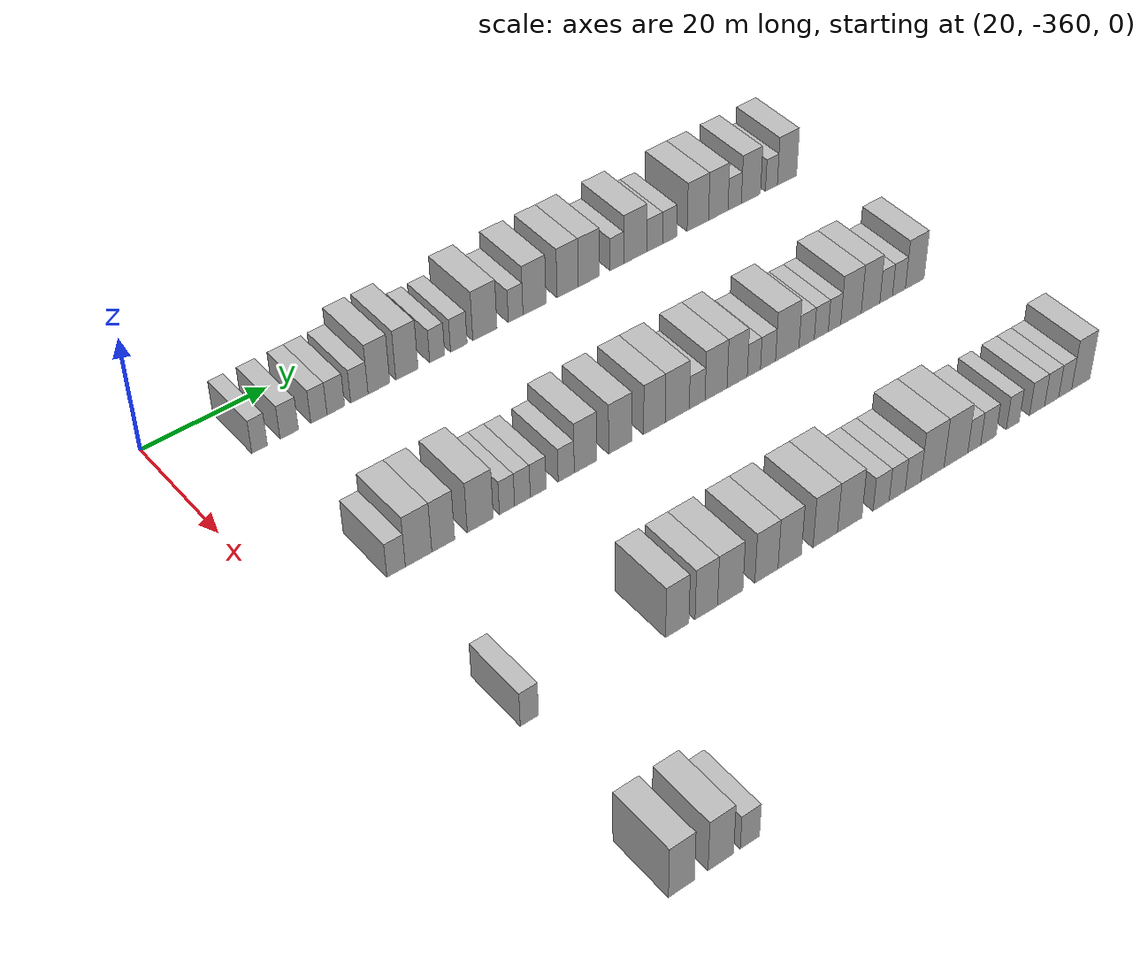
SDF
<sdf version="1.6">
 <world name="default">
  <model name="building_24">
   <static>1</static>
   <pose>25.0000 -347.4698 0 0.000000 0.000000 0.000000</pose>
   <link name="link">
    <pose>0 0 3.00 0 0 0</pose>
    <collision name="collision"><geometry><box><size>10.0000 2.4707 6.0000</size></box></geometry></collision>
    <visual name="visual">
     <cast_shadows>0</cast_shadows>
     <geometry><box><size>10.0000 2.4707 6.0000</size></box></geometry>
     <material>
      <script>
       <uri>model://HANNAS_wall/materials/scripts</uri>
       <uri>model://HANNAS_wall/materials/textures</uri>
       <name>vrc/HANNAS_wall</name>
      </script>
     </material>
    </visual>
   </link>
  </model>
  <model name="building_25">
   <static>1</static>
   <pose>25.0000 -342.7646 0 0.000000 0.000000 0.000000</pose>
   <link name="link">
    <pose>0 0 3.00 0 0 0</pose>
    <collision name="collision"><geometry><box><size>10.0000 2.9396 6.0000</size></box></geometry></collision>
    <visual name="visual">
     <cast_shadows>0</cast_shadows>
     <geometry><box><size>10.0000 2.9396 6.0000</size></box></geometry>
     <material>
      <script>
       <uri>model://HANNAS_wall/materials/scripts</uri>
       <uri>model://HANNAS_wall/materials/textures</uri>
       <name>vrc/HANNAS_wall</name>
      </script>
     </material>
    </visual>
   </link>
  </model>
  <model name="building_26">
   <static>1</static>
   <pose>25.0000 -337.9768 0 0.000000 0.000000 0.000000</pose>
   <link name="link">
    <pose>0 0 3.00 0 0 0</pose>
    <collision name="collision"><geometry><box><size>10.0000 2.6360 6.0000</size></box></geometry></collision>
    <visual name="visual">
     <cast_shadows>0</cast_shadows>
     <geometry><box><size>10.0000 2.6360 6.0000</size></box></geometry>
     <material>
      <script>
       <uri>model://HANNAS_wall/materials/scripts</uri>
       <uri>model://HANNAS_wall/materials/textures</uri>
       <name>vrc/HANNAS_wall</name>
      </script>
     </material>
    </visual>
   </link>
  </model>
  <model name="building_27">
   <static>1</static>
   <pose>25.0000 -335.2163 0 0.000000 0.000000 0.000000</pose>
   <link name="link">
    <pose>0 0 3.00 0 0 0</pose>
    <collision name="collision"><geometry><box><size>10.0000 2.8850 6.0000</size></box></geometry></collision>
    <visual name="visual">
     <cast_shadows>0</cast_shadows>
     <geometry><box><size>10.0000 2.8850 6.0000</size></box></geometry>
     <material>
      <script>
       <uri>model://HANNAS_wall/materials/scripts</uri>
       <uri>model://HANNAS_wall/materials/textures</uri>
       <name>vrc/HANNAS_wall</name>
      </script>
     </material>
    </visual>
   </link>
  </model>
  <model name="building_28">
   <static>1</static>
   <pose>25.0000 -331.3370 0 0.000000 0.000000 0.000000</pose>
   <link name="link">
    <pose>0 0 3.00 0 0 0</pose>
    <collision name="collision"><geometry><box><size>10.0000 2.8737 6.0000</size></box></geometry></collision>
    <visual name="visual">
     <cast_shadows>0</cast_shadows>
     <geometry><box><size>10.0000 2.8737 6.0000</size></box></geometry>
     <material>
      <script>
       <uri>model://HANNAS_wall/materials/scripts</uri>
       <uri>model://HANNAS_wall/materials/textures</uri>
       <name>vrc/HANNAS_wall</name>
      </script>
     </material>
    </visual>
   </link>
  </model>
  <model name="building_29">
   <static>1</static>
   <pose>25.0000 -328.0822 0 0.000000 0.000000 0.000000</pose>
   <link name="link">
    <pose>0 0 4.50 0 0 0</pose>
    <collision name="collision"><geometry><box><size>10.0000 3.6358 9.0000</size></box></geometry></collision>
    <visual name="visual">
     <cast_shadows>0</cast_shadows>
     <geometry><box><size>10.0000 3.6358 9.0000</size></box></geometry>
     <material>
      <script>
       <uri>model://HANNAS_wall/materials/scripts</uri>
       <uri>model://HANNAS_wall/materials/textures</uri>
       <name>vrc/HANNAS_wall</name>
      </script>
     </material>
    </visual>
   </link>
  </model>
  <model name="building_30">
   <static>1</static>
   <pose>25.0000 -323.3908 0 0.000000 0.000000 0.000000</pose>
   <link name="link">
    <pose>0 0 4.50 0 0 0</pose>
    <collision name="collision"><geometry><box><size>10.0000 3.7471 9.0000</size></box></geometry></collision>
    <visual name="visual">
     <cast_shadows>0</cast_shadows>
     <geometry><box><size>10.0000 3.7471 9.0000</size></box></geometry>
     <material>
      <script>
       <uri>model://HANNAS_wall/materials/scripts</uri>
       <uri>model://HANNAS_wall/materials/textures</uri>
       <name>vrc/HANNAS_wall</name>
      </script>
     </material>
    </visual>
   </link>
  </model>
  <model name="building_31">
   <static>1</static>
   <pose>25.0000 -318.2266 0 0.000000 0.000000 0.000000</pose>
   <link name="link">
    <pose>0 0 3.00 0 0 0</pose>
    <collision name="collision"><geometry><box><size>10.0000 2.5813 6.0000</size></box></geometry></collision>
    <visual name="visual">
     <cast_shadows>0</cast_shadows>
     <geometry><box><size>10.0000 2.5813 6.0000</size></box></geometry>
     <material>
      <script>
       <uri>model://HANNAS_wall/materials/scripts</uri>
       <uri>model://HANNAS_wall/materials/textures</uri>
       <name>vrc/HANNAS_wall</name>
      </script>
     </material>
    </visual>
   </link>
  </model>
  <model name="building_32">
   <static>1</static>
   <pose>25.0000 -314.5024 0 0.000000 0.000000 0.000000</pose>
   <link name="link">
    <pose>0 0 3.00 0 0 0</pose>
    <collision name="collision"><geometry><box><size>10.0000 2.8670 6.0000</size></box></geometry></collision>
    <visual name="visual">
     <cast_shadows>0</cast_shadows>
     <geometry><box><size>10.0000 2.8670 6.0000</size></box></geometry>
     <material>
      <script>
       <uri>model://HANNAS_wall/materials/scripts</uri>
       <uri>model://HANNAS_wall/materials/textures</uri>
       <name>vrc/HANNAS_wall</name>
      </script>
     </material>
    </visual>
   </link>
  </model>
  <model name="building_33">
   <static>1</static>
   <pose>25.0000 -309.9465 0 0.000000 0.000000 0.000000</pose>
   <link name="link">
    <pose>0 0 4.50 0 0 0</pose>
    <collision name="collision"><geometry><box><size>10.0000 4.2448 9.0000</size></box></geometry></collision>
    <visual name="visual">
     <cast_shadows>0</cast_shadows>
     <geometry><box><size>10.0000 4.2448 9.0000</size></box></geometry>
     <material>
      <script>
       <uri>model://HANNAS_wall/materials/scripts</uri>
       <uri>model://HANNAS_wall/materials/textures</uri>
       <name>vrc/HANNAS_wall</name>
      </script>
     </material>
    </visual>
   </link>
  </model>
  <model name="building_34">
   <static>1</static>
   <pose>25.0000 -304.5133 0 0.000000 0.000000 0.000000</pose>
   <link name="link">
    <pose>0 0 3.00 0 0 0</pose>
    <collision name="collision"><geometry><box><size>10.0000 2.6217 6.0000</size></box></geometry></collision>
    <visual name="visual">
     <cast_shadows>0</cast_shadows>
     <geometry><box><size>10.0000 2.6217 6.0000</size></box></geometry>
     <material>
      <script>
       <uri>model://HANNAS_wall/materials/scripts</uri>
       <uri>model://HANNAS_wall/materials/textures</uri>
       <name>vrc/HANNAS_wall</name>
      </script>
     </material>
    </visual>
   </link>
  </model>
  <model name="building_35">
   <static>1</static>
   <pose>25.0000 -301.1236 0 0.000000 0.000000 0.000000</pose>
   <link name="link">
    <pose>0 0 4.50 0 0 0</pose>
    <collision name="collision"><geometry><box><size>10.0000 4.1577 9.0000</size></box></geometry></collision>
    <visual name="visual">
     <cast_shadows>0</cast_shadows>
     <geometry><box><size>10.0000 4.1577 9.0000</size></box></geometry>
     <material>
      <script>
       <uri>model://HANNAS_wall/materials/scripts</uri>
       <uri>model://HANNAS_wall/materials/textures</uri>
       <name>vrc/HANNAS_wall</name>
      </script>
     </material>
    </visual>
   </link>
  </model>
  <model name="building_36">
   <static>1</static>
   <pose>25.0000 -295.1092 0 0.000000 0.000000 0.000000</pose>
   <link name="link">
    <pose>0 0 4.50 0 0 0</pose>
    <collision name="collision"><geometry><box><size>10.0000 3.8711 9.0000</size></box></geometry></collision>
    <visual name="visual">
     <cast_shadows>0</cast_shadows>
     <geometry><box><size>10.0000 3.8711 9.0000</size></box></geometry>
     <material>
      <script>
       <uri>model://HANNAS_wall/materials/scripts</uri>
       <uri>model://HANNAS_wall/materials/textures</uri>
       <name>vrc/HANNAS_wall</name>
      </script>
     </material>
    </visual>
   </link>
  </model>
  <model name="building_37">
   <static>1</static>
   <pose>25.0000 -291.2293 0 0.000000 0.000000 0.000000</pose>
   <link name="link">
    <pose>0 0 4.50 0 0 0</pose>
    <collision name="collision"><geometry><box><size>10.0000 3.8886 9.0000</size></box></geometry></collision>
    <visual name="visual">
     <cast_shadows>0</cast_shadows>
     <geometry><box><size>10.0000 3.8886 9.0000</size></box></geometry>
     <material>
      <script>
       <uri>model://HANNAS_wall/materials/scripts</uri>
       <uri>model://HANNAS_wall/materials/textures</uri>
       <name>vrc/HANNAS_wall</name>
      </script>
     </material>
    </visual>
   </link>
  </model>
  <model name="building_38">
   <static>1</static>
   <pose>25.0000 -286.0181 0 0.000000 0.000000 0.000000</pose>
   <link name="link">
    <pose>0 0 3.00 0 0 0</pose>
    <collision name="collision"><geometry><box><size>10.0000 2.5339 6.0000</size></box></geometry></collision>
    <visual name="visual">
     <cast_shadows>0</cast_shadows>
     <geometry><box><size>10.0000 2.5339 6.0000</size></box></geometry>
     <material>
      <script>
       <uri>model://HANNAS_wall/materials/scripts</uri>
       <uri>model://HANNAS_wall/materials/textures</uri>
       <name>vrc/HANNAS_wall</name>
      </script>
     </material>
    </visual>
   </link>
  </model>
  <model name="building_39">
   <static>1</static>
   <pose>25.0000 -282.5624 0 0.000000 0.000000 0.000000</pose>
   <link name="link">
    <pose>0 0 4.50 0 0 0</pose>
    <collision name="collision"><geometry><box><size>10.0000 4.3776 9.0000</size></box></geometry></collision>
    <visual name="visual">
     <cast_shadows>0</cast_shadows>
     <geometry><box><size>10.0000 4.3776 9.0000</size></box></geometry>
     <material>
      <script>
       <uri>model://HANNAS_wall/materials/scripts</uri>
       <uri>model://HANNAS_wall/materials/textures</uri>
       <name>vrc/HANNAS_wall</name>
      </script>
     </material>
    </visual>
   </link>
  </model>
  <model name="building_40">
   <static>1</static>
   <pose>25.0000 -278.8828 0 0.000000 0.000000 0.000000</pose>
   <link name="link">
    <pose>0 0 3.00 0 0 0</pose>
    <collision name="collision"><geometry><box><size>10.0000 2.9815 6.0000</size></box></geometry></collision>
    <visual name="visual">
     <cast_shadows>0</cast_shadows>
     <geometry><box><size>10.0000 2.9815 6.0000</size></box></geometry>
     <material>
      <script>
       <uri>model://HANNAS_wall/materials/scripts</uri>
       <uri>model://HANNAS_wall/materials/textures</uri>
       <name>vrc/HANNAS_wall</name>
      </script>
     </material>
    </visual>
   </link>
  </model>
  <model name="building_41">
   <static>1</static>
   <pose>25.0000 -276.0156 0 0.000000 0.000000 0.000000</pose>
   <link name="link">
    <pose>0 0 3.00 0 0 0</pose>
    <collision name="collision"><geometry><box><size>10.0000 2.7528 6.0000</size></box></geometry></collision>
    <visual name="visual">
     <cast_shadows>0</cast_shadows>
     <geometry><box><size>10.0000 2.7528 6.0000</size></box></geometry>
     <material>
      <script>
       <uri>model://HANNAS_wall/materials/scripts</uri>
       <uri>model://HANNAS_wall/materials/textures</uri>
       <name>vrc/HANNAS_wall</name>
      </script>
     </material>
    </visual>
   </link>
  </model>
  <model name="building_42">
   <static>1</static>
   <pose>25.0000 -270.5534 0 0.000000 0.000000 0.000000</pose>
   <link name="link">
    <pose>0 0 4.50 0 0 0</pose>
    <collision name="collision"><geometry><box><size>10.0000 4.1716 9.0000</size></box></geometry></collision>
    <visual name="visual">
     <cast_shadows>0</cast_shadows>
     <geometry><box><size>10.0000 4.1716 9.0000</size></box></geometry>
     <material>
      <script>
       <uri>model://HANNAS_wall/materials/scripts</uri>
       <uri>model://HANNAS_wall/materials/textures</uri>
       <name>vrc/HANNAS_wall</name>
      </script>
     </material>
    </visual>
   </link>
  </model>
  <model name="building_43">
   <static>1</static>
   <pose>25.0000 -266.5493 0 0.000000 0.000000 0.000000</pose>
   <link name="link">
    <pose>0 0 4.50 0 0 0</pose>
    <collision name="collision"><geometry><box><size>10.0000 3.8367 9.0000</size></box></geometry></collision>
    <visual name="visual">
     <cast_shadows>0</cast_shadows>
     <geometry><box><size>10.0000 3.8367 9.0000</size></box></geometry>
     <material>
      <script>
       <uri>model://HANNAS_wall/materials/scripts</uri>
       <uri>model://HANNAS_wall/materials/textures</uri>
       <name>vrc/HANNAS_wall</name>
      </script>
     </material>
    </visual>
   </link>
  </model>
  <model name="building_44">
   <static>1</static>
   <pose>25.0000 -263.3040 0 0.000000 0.000000 0.000000</pose>
   <link name="link">
    <pose>0 0 3.00 0 0 0</pose>
    <collision name="collision"><geometry><box><size>10.0000 2.6540 6.0000</size></box></geometry></collision>
    <visual name="visual">
     <cast_shadows>0</cast_shadows>
     <geometry><box><size>10.0000 2.6540 6.0000</size></box></geometry>
     <material>
      <script>
       <uri>model://HANNAS_wall/materials/scripts</uri>
       <uri>model://HANNAS_wall/materials/textures</uri>
       <name>vrc/HANNAS_wall</name>
      </script>
     </material>
    </visual>
   </link>
  </model>
  <model name="building_45">
   <static>1</static>
   <pose>25.0000 -260.0504 0 0.000000 0.000000 0.000000</pose>
   <link name="link">
    <pose>0 0 4.50 0 0 0</pose>
    <collision name="collision"><geometry><box><size>10.0000 3.8531 9.0000</size></box></geometry></collision>
    <visual name="visual">
     <cast_shadows>0</cast_shadows>
     <geometry><box><size>10.0000 3.8531 9.0000</size></box></geometry>
     <material>
      <script>
       <uri>model://HANNAS_wall/materials/scripts</uri>
       <uri>model://HANNAS_wall/materials/textures</uri>
       <name>vrc/HANNAS_wall</name>
      </script>
     </material>
    </visual>
   </link>
  </model>
  <model name="building_46">
   <static>1</static>
   <pose>25.0000 -255.9200 0 0.000000 0.000000 0.000000</pose>
   <link name="link">
    <pose>0 0 3.00 0 0 0</pose>
    <collision name="collision"><geometry><box><size>10.0000 2.4077 6.0000</size></box></geometry></collision>
    <visual name="visual">
     <cast_shadows>0</cast_shadows>
     <geometry><box><size>10.0000 2.4077 6.0000</size></box></geometry>
     <material>
      <script>
       <uri>model://HANNAS_wall/materials/scripts</uri>
       <uri>model://HANNAS_wall/materials/textures</uri>
       <name>vrc/HANNAS_wall</name>
      </script>
     </material>
    </visual>
   </link>
  </model>
  <model name="building_47">
   <static>1</static>
   <pose>25.0000 -252.7538 0 0.000000 0.000000 0.000000</pose>
   <link name="link">
    <pose>0 0 4.50 0 0 0</pose>
    <collision name="collision"><geometry><box><size>10.0000 3.9247 9.0000</size></box></geometry></collision>
    <visual name="visual">
     <cast_shadows>0</cast_shadows>
     <geometry><box><size>10.0000 3.9247 9.0000</size></box></geometry>
     <material>
      <script>
       <uri>model://HANNAS_wall/materials/scripts</uri>
       <uri>model://HANNAS_wall/materials/textures</uri>
       <name>vrc/HANNAS_wall</name>
      </script>
     </material>
    </visual>
   </link>
  </model>
  <model name="building_248">
   <static>1</static>
   <pose>55.0000 -345.8788 0 0.000000 0.000000 0.000000</pose>
   <link name="link">
    <pose>0 0 3.00 0 0 0</pose>
    <collision name="collision"><geometry><box><size>10.0000 2.8584 6.0000</size></box></geometry></collision>
    <visual name="visual">
     <cast_shadows>0</cast_shadows>
     <geometry><box><size>10.0000 2.8584 6.0000</size></box></geometry>
     <material>
      <script>
       <uri>model://HANNAS_wall/materials/scripts</uri>
       <uri>model://HANNAS_wall/materials/textures</uri>
       <name>vrc/HANNAS_wall</name>
      </script>
     </material>
    </visual>
   </link>
  </model>
  <model name="building_249">
   <static>1</static>
   <pose>55.0000 -342.3794 0 0.000000 0.000000 0.000000</pose>
   <link name="link">
    <pose>0 0 4.50 0 0 0</pose>
    <collision name="collision"><geometry><box><size>10.0000 4.1403 9.0000</size></box></geometry></collision>
    <visual name="visual">
     <cast_shadows>0</cast_shadows>
     <geometry><box><size>10.0000 4.1403 9.0000</size></box></geometry>
     <material>
      <script>
       <uri>model://HANNAS_wall/materials/scripts</uri>
       <uri>model://HANNAS_wall/materials/textures</uri>
       <name>vrc/HANNAS_wall</name>
      </script>
     </material>
    </visual>
   </link>
  </model>
  <model name="building_250">
   <static>1</static>
   <pose>55.0000 -338.5045 0 0.000000 0.000000 0.000000</pose>
   <link name="link">
    <pose>0 0 4.50 0 0 0</pose>
    <collision name="collision"><geometry><box><size>10.0000 3.6096 9.0000</size></box></geometry></collision>
    <visual name="visual">
     <cast_shadows>0</cast_shadows>
     <geometry><box><size>10.0000 3.6096 9.0000</size></box></geometry>
     <material>
      <script>
       <uri>model://HANNAS_wall/materials/scripts</uri>
       <uri>model://HANNAS_wall/materials/textures</uri>
       <name>vrc/HANNAS_wall</name>
      </script>
     </material>
    </visual>
   </link>
  </model>
  <model name="building_251">
   <static>1</static>
   <pose>55.0000 -332.6060 0 0.000000 0.000000 0.000000</pose>
   <link name="link">
    <pose>0 0 4.50 0 0 0</pose>
    <collision name="collision"><geometry><box><size>10.0000 4.1875 9.0000</size></box></geometry></collision>
    <visual name="visual">
     <cast_shadows>0</cast_shadows>
     <geometry><box><size>10.0000 4.1875 9.0000</size></box></geometry>
     <material>
      <script>
       <uri>model://HANNAS_wall/materials/scripts</uri>
       <uri>model://HANNAS_wall/materials/textures</uri>
       <name>vrc/HANNAS_wall</name>
      </script>
     </material>
    </visual>
   </link>
  </model>
  <model name="building_252">
   <static>1</static>
   <pose>55.0000 -328.2767 0 0.000000 0.000000 0.000000</pose>
   <link name="link">
    <pose>0 0 3.00 0 0 0</pose>
    <collision name="collision"><geometry><box><size>10.0000 2.4710 6.0000</size></box></geometry></collision>
    <visual name="visual">
     <cast_shadows>0</cast_shadows>
     <geometry><box><size>10.0000 2.4710 6.0000</size></box></geometry>
     <material>
      <script>
       <uri>model://HANNAS_wall/materials/scripts</uri>
       <uri>model://HANNAS_wall/materials/textures</uri>
       <name>vrc/HANNAS_wall</name>
      </script>
     </material>
    </visual>
   </link>
  </model>
  <model name="building_253">
   <static>1</static>
   <pose>55.0000 -325.7567 0 0.000000 0.000000 0.000000</pose>
   <link name="link">
    <pose>0 0 3.00 0 0 0</pose>
    <collision name="collision"><geometry><box><size>10.0000 2.5690 6.0000</size></box></geometry></collision>
    <visual name="visual">
     <cast_shadows>0</cast_shadows>
     <geometry><box><size>10.0000 2.5690 6.0000</size></box></geometry>
     <material>
      <script>
       <uri>model://HANNAS_wall/materials/scripts</uri>
       <uri>model://HANNAS_wall/materials/textures</uri>
       <name>vrc/HANNAS_wall</name>
      </script>
     </material>
    </visual>
   </link>
  </model>
  <model name="building_254">
   <static>1</static>
   <pose>55.0000 -323.1567 0 0.000000 0.000000 0.000000</pose>
   <link name="link">
    <pose>0 0 3.00 0 0 0</pose>
    <collision name="collision"><geometry><box><size>10.0000 2.6310 6.0000</size></box></geometry></collision>
    <visual name="visual">
     <cast_shadows>0</cast_shadows>
     <geometry><box><size>10.0000 2.6310 6.0000</size></box></geometry>
     <material>
      <script>
       <uri>model://HANNAS_wall/materials/scripts</uri>
       <uri>model://HANNAS_wall/materials/textures</uri>
       <name>vrc/HANNAS_wall</name>
      </script>
     </material>
    </visual>
   </link>
  </model>
  <model name="building_255">
   <static>1</static>
   <pose>55.0000 -318.4912 0 0.000000 0.000000 0.000000</pose>
   <link name="link">
    <pose>0 0 3.00 0 0 0</pose>
    <collision name="collision"><geometry><box><size>10.0000 2.7001 6.0000</size></box></geometry></collision>
    <visual name="visual">
     <cast_shadows>0</cast_shadows>
     <geometry><box><size>10.0000 2.7001 6.0000</size></box></geometry>
     <material>
      <script>
       <uri>model://HANNAS_wall/materials/scripts</uri>
       <uri>model://HANNAS_wall/materials/textures</uri>
       <name>vrc/HANNAS_wall</name>
      </script>
     </material>
    </visual>
   </link>
  </model>
  <model name="building_256">
   <static>1</static>
   <pose>55.0000 -315.2245 0 0.000000 0.000000 0.000000</pose>
   <link name="link">
    <pose>0 0 4.50 0 0 0</pose>
    <collision name="collision"><geometry><box><size>10.0000 3.8333 9.0000</size></box></geometry></collision>
    <visual name="visual">
     <cast_shadows>0</cast_shadows>
     <geometry><box><size>10.0000 3.8333 9.0000</size></box></geometry>
     <material>
      <script>
       <uri>model://HANNAS_wall/materials/scripts</uri>
       <uri>model://HANNAS_wall/materials/textures</uri>
       <name>vrc/HANNAS_wall</name>
      </script>
     </material>
    </visual>
   </link>
  </model>
  <model name="building_257">
   <static>1</static>
   <pose>55.0000 -309.2919 0 0.000000 0.000000 0.000000</pose>
   <link name="link">
    <pose>0 0 4.50 0 0 0</pose>
    <collision name="collision"><geometry><box><size>10.0000 4.0318 9.0000</size></box></geometry></collision>
    <visual name="visual">
     <cast_shadows>0</cast_shadows>
     <geometry><box><size>10.0000 4.0318 9.0000</size></box></geometry>
     <material>
      <script>
       <uri>model://HANNAS_wall/materials/scripts</uri>
       <uri>model://HANNAS_wall/materials/textures</uri>
       <name>vrc/HANNAS_wall</name>
      </script>
     </material>
    </visual>
   </link>
  </model>
  <model name="building_258">
   <static>1</static>
   <pose>55.0000 -303.3917 0 0.000000 0.000000 0.000000</pose>
   <link name="link">
    <pose>0 0 4.50 0 0 0</pose>
    <collision name="collision"><geometry><box><size>10.0000 3.7687 9.0000</size></box></geometry></collision>
    <visual name="visual">
     <cast_shadows>0</cast_shadows>
     <geometry><box><size>10.0000 3.7687 9.0000</size></box></geometry>
     <material>
      <script>
       <uri>model://HANNAS_wall/materials/scripts</uri>
       <uri>model://HANNAS_wall/materials/textures</uri>
       <name>vrc/HANNAS_wall</name>
      </script>
     </material>
    </visual>
   </link>
  </model>
  <model name="building_259">
   <static>1</static>
   <pose>55.0000 -299.3688 0 0.000000 0.000000 0.000000</pose>
   <link name="link">
    <pose>0 0 4.50 0 0 0</pose>
    <collision name="collision"><geometry><box><size>10.0000 4.2770 9.0000</size></box></geometry></collision>
    <visual name="visual">
     <cast_shadows>0</cast_shadows>
     <geometry><box><size>10.0000 4.2770 9.0000</size></box></geometry>
     <material>
      <script>
       <uri>model://HANNAS_wall/materials/scripts</uri>
       <uri>model://HANNAS_wall/materials/textures</uri>
       <name>vrc/HANNAS_wall</name>
      </script>
     </material>
    </visual>
   </link>
  </model>
  <model name="building_260">
   <static>1</static>
   <pose>55.0000 -295.8200 0 0.000000 0.000000 0.000000</pose>
   <link name="link">
    <pose>0 0 3.00 0 0 0</pose>
    <collision name="collision"><geometry><box><size>10.0000 2.8206 6.0000</size></box></geometry></collision>
    <visual name="visual">
     <cast_shadows>0</cast_shadows>
     <geometry><box><size>10.0000 2.8206 6.0000</size></box></geometry>
     <material>
      <script>
       <uri>model://HANNAS_wall/materials/scripts</uri>
       <uri>model://HANNAS_wall/materials/textures</uri>
       <name>vrc/HANNAS_wall</name>
      </script>
     </material>
    </visual>
   </link>
  </model>
  <model name="building_261">
   <static>1</static>
   <pose>55.0000 -292.4169 0 0.000000 0.000000 0.000000</pose>
   <link name="link">
    <pose>0 0 4.50 0 0 0</pose>
    <collision name="collision"><geometry><box><size>10.0000 3.9857 9.0000</size></box></geometry></collision>
    <visual name="visual">
     <cast_shadows>0</cast_shadows>
     <geometry><box><size>10.0000 3.9857 9.0000</size></box></geometry>
     <material>
      <script>
       <uri>model://HANNAS_wall/materials/scripts</uri>
       <uri>model://HANNAS_wall/materials/textures</uri>
       <name>vrc/HANNAS_wall</name>
      </script>
     </material>
    </visual>
   </link>
  </model>
  <model name="building_262">
   <static>1</static>
   <pose>55.0000 -288.5736 0 0.000000 0.000000 0.000000</pose>
   <link name="link">
    <pose>0 0 4.50 0 0 0</pose>
    <collision name="collision"><geometry><box><size>10.0000 3.7008 9.0000</size></box></geometry></collision>
    <visual name="visual">
     <cast_shadows>0</cast_shadows>
     <geometry><box><size>10.0000 3.7008 9.0000</size></box></geometry>
     <material>
      <script>
       <uri>model://HANNAS_wall/materials/scripts</uri>
       <uri>model://HANNAS_wall/materials/textures</uri>
       <name>vrc/HANNAS_wall</name>
      </script>
     </material>
    </visual>
   </link>
  </model>
  <model name="building_263">
   <static>1</static>
   <pose>55.0000 -285.5099 0 0.000000 0.000000 0.000000</pose>
   <link name="link">
    <pose>0 0 3.00 0 0 0</pose>
    <collision name="collision"><geometry><box><size>10.0000 2.4266 6.0000</size></box></geometry></collision>
    <visual name="visual">
     <cast_shadows>0</cast_shadows>
     <geometry><box><size>10.0000 2.4266 6.0000</size></box></geometry>
     <material>
      <script>
       <uri>model://HANNAS_wall/materials/scripts</uri>
       <uri>model://HANNAS_wall/materials/textures</uri>
       <name>vrc/HANNAS_wall</name>
      </script>
     </material>
    </visual>
   </link>
  </model>
  <model name="building_264">
   <static>1</static>
   <pose>55.0000 -282.8928 0 0.000000 0.000000 0.000000</pose>
   <link name="link">
    <pose>0 0 3.00 0 0 0</pose>
    <collision name="collision"><geometry><box><size>10.0000 2.8077 6.0000</size></box></geometry></collision>
    <visual name="visual">
     <cast_shadows>0</cast_shadows>
     <geometry><box><size>10.0000 2.8077 6.0000</size></box></geometry>
     <material>
      <script>
       <uri>model://HANNAS_wall/materials/scripts</uri>
       <uri>model://HANNAS_wall/materials/textures</uri>
       <name>vrc/HANNAS_wall</name>
      </script>
     </material>
    </visual>
   </link>
  </model>
  <model name="building_265">
   <static>1</static>
   <pose>55.0000 -279.2936 0 0.000000 0.000000 0.000000</pose>
   <link name="link">
    <pose>0 0 4.50 0 0 0</pose>
    <collision name="collision"><geometry><box><size>10.0000 4.3905 9.0000</size></box></geometry></collision>
    <visual name="visual">
     <cast_shadows>0</cast_shadows>
     <geometry><box><size>10.0000 4.3905 9.0000</size></box></geometry>
     <material>
      <script>
       <uri>model://HANNAS_wall/materials/scripts</uri>
       <uri>model://HANNAS_wall/materials/textures</uri>
       <name>vrc/HANNAS_wall</name>
      </script>
     </material>
    </visual>
   </link>
  </model>
  <model name="building_266">
   <static>1</static>
   <pose>55.0000 -275.6474 0 0.000000 0.000000 0.000000</pose>
   <link name="link">
    <pose>0 0 3.00 0 0 0</pose>
    <collision name="collision"><geometry><box><size>10.0000 2.9019 6.0000</size></box></geometry></collision>
    <visual name="visual">
     <cast_shadows>0</cast_shadows>
     <geometry><box><size>10.0000 2.9019 6.0000</size></box></geometry>
     <material>
      <script>
       <uri>model://HANNAS_wall/materials/scripts</uri>
       <uri>model://HANNAS_wall/materials/textures</uri>
       <name>vrc/HANNAS_wall</name>
      </script>
     </material>
    </visual>
   </link>
  </model>
  <model name="building_267">
   <static>1</static>
   <pose>55.0000 -272.8581 0 0.000000 0.000000 0.000000</pose>
   <link name="link">
    <pose>0 0 3.00 0 0 0</pose>
    <collision name="collision"><geometry><box><size>10.0000 2.6767 6.0000</size></box></geometry></collision>
    <visual name="visual">
     <cast_shadows>0</cast_shadows>
     <geometry><box><size>10.0000 2.6767 6.0000</size></box></geometry>
     <material>
      <script>
       <uri>model://HANNAS_wall/materials/scripts</uri>
       <uri>model://HANNAS_wall/materials/textures</uri>
       <name>vrc/HANNAS_wall</name>
      </script>
     </material>
    </visual>
   </link>
  </model>
  <model name="building_268">
   <static>1</static>
   <pose>55.0000 -270.3193 0 0.000000 0.000000 0.000000</pose>
   <link name="link">
    <pose>0 0 3.00 0 0 0</pose>
    <collision name="collision"><geometry><box><size>10.0000 2.4010 6.0000</size></box></geometry></collision>
    <visual name="visual">
     <cast_shadows>0</cast_shadows>
     <geometry><box><size>10.0000 2.4010 6.0000</size></box></geometry>
     <material>
      <script>
       <uri>model://HANNAS_wall/materials/scripts</uri>
       <uri>model://HANNAS_wall/materials/textures</uri>
       <name>vrc/HANNAS_wall</name>
      </script>
     </material>
    </visual>
   </link>
  </model>
  <model name="building_269">
   <static>1</static>
   <pose>55.0000 -267.1289 0 0.000000 0.000000 0.000000</pose>
   <link name="link">
    <pose>0 0 4.50 0 0 0</pose>
    <collision name="collision"><geometry><box><size>10.0000 3.9796 9.0000</size></box></geometry></collision>
    <visual name="visual">
     <cast_shadows>0</cast_shadows>
     <geometry><box><size>10.0000 3.9796 9.0000</size></box></geometry>
     <material>
      <script>
       <uri>model://HANNAS_wall/materials/scripts</uri>
       <uri>model://HANNAS_wall/materials/textures</uri>
       <name>vrc/HANNAS_wall</name>
      </script>
     </material>
    </visual>
   </link>
  </model>
  <model name="building_270">
   <static>1</static>
   <pose>55.0000 -263.3170 0 0.000000 0.000000 0.000000</pose>
   <link name="link">
    <pose>0 0 4.50 0 0 0</pose>
    <collision name="collision"><geometry><box><size>10.0000 3.6441 9.0000</size></box></geometry></collision>
    <visual name="visual">
     <cast_shadows>0</cast_shadows>
     <geometry><box><size>10.0000 3.6441 9.0000</size></box></geometry>
     <material>
      <script>
       <uri>model://HANNAS_wall/materials/scripts</uri>
       <uri>model://HANNAS_wall/materials/textures</uri>
       <name>vrc/HANNAS_wall</name>
      </script>
     </material>
    </visual>
   </link>
  </model>
  <model name="building_271">
   <static>1</static>
   <pose>55.0000 -260.2455 0 0.000000 0.000000 0.000000</pose>
   <link name="link">
    <pose>0 0 3.00 0 0 0</pose>
    <collision name="collision"><geometry><box><size>10.0000 2.4991 6.0000</size></box></geometry></collision>
    <visual name="visual">
     <cast_shadows>0</cast_shadows>
     <geometry><box><size>10.0000 2.4991 6.0000</size></box></geometry>
     <material>
      <script>
       <uri>model://HANNAS_wall/materials/scripts</uri>
       <uri>model://HANNAS_wall/materials/textures</uri>
       <name>vrc/HANNAS_wall</name>
      </script>
     </material>
    </visual>
   </link>
  </model>
  <model name="building_272">
   <static>1</static>
   <pose>55.0000 -257.7073 0 0.000000 0.000000 0.000000</pose>
   <link name="link">
    <pose>0 0 3.00 0 0 0</pose>
    <collision name="collision"><geometry><box><size>10.0000 2.5772 6.0000</size></box></geometry></collision>
    <visual name="visual">
     <cast_shadows>0</cast_shadows>
     <geometry><box><size>10.0000 2.5772 6.0000</size></box></geometry>
     <material>
      <script>
       <uri>model://HANNAS_wall/materials/scripts</uri>
       <uri>model://HANNAS_wall/materials/textures</uri>
       <name>vrc/HANNAS_wall</name>
      </script>
     </material>
    </visual>
   </link>
  </model>
  <model name="building_273">
   <static>1</static>
   <pose>55.0000 -254.5461 0 0.000000 0.000000 0.000000</pose>
   <link name="link">
    <pose>0 0 4.50 0 0 0</pose>
    <collision name="collision"><geometry><box><size>10.0000 3.7454 9.0000</size></box></geometry></collision>
    <visual name="visual">
     <cast_shadows>0</cast_shadows>
     <geometry><box><size>10.0000 3.7454 9.0000</size></box></geometry>
     <material>
      <script>
       <uri>model://HANNAS_wall/materials/scripts</uri>
       <uri>model://HANNAS_wall/materials/textures</uri>
       <name>vrc/HANNAS_wall</name>
      </script>
     </material>
    </visual>
   </link>
  </model>
  <model name="building_489">
   <static>1</static>
   <pose>85.0000 -347.1806 0 0.000000 0.000000 0.000000</pose>
   <link name="link">
    <pose>0 0 3.00 0 0 0</pose>
    <collision name="collision"><geometry><box><size>10.0000 2.7338 6.0000</size></box></geometry></collision>
    <visual name="visual">
     <cast_shadows>0</cast_shadows>
     <geometry><box><size>10.0000 2.7338 6.0000</size></box></geometry>
     <material>
      <script>
       <uri>model://HANNAS_wall/materials/scripts</uri>
       <uri>model://HANNAS_wall/materials/textures</uri>
       <name>vrc/HANNAS_wall</name>
      </script>
     </material>
    </visual>
   </link>
  </model>
  <model name="building_490">
   <static>1</static>
   <pose>85.0000 -324.1679 0 0.000000 0.000000 0.000000</pose>
   <link name="link">
    <pose>0 0 4.50 0 0 0</pose>
    <collision name="collision"><geometry><box><size>10.0000 3.7639 9.0000</size></box></geometry></collision>
    <visual name="visual">
     <cast_shadows>0</cast_shadows>
     <geometry><box><size>10.0000 3.7639 9.0000</size></box></geometry>
     <material>
      <script>
       <uri>model://HANNAS_wall/materials/scripts</uri>
       <uri>model://HANNAS_wall/materials/textures</uri>
       <name>vrc/HANNAS_wall</name>
      </script>
     </material>
    </visual>
   </link>
  </model>
  <model name="building_491">
   <static>1</static>
   <pose>85.0000 -319.4460 0 0.000000 0.000000 0.000000</pose>
   <link name="link">
    <pose>0 0 4.50 0 0 0</pose>
    <collision name="collision"><geometry><box><size>10.0000 3.6799 9.0000</size></box></geometry></collision>
    <visual name="visual">
     <cast_shadows>0</cast_shadows>
     <geometry><box><size>10.0000 3.6799 9.0000</size></box></geometry>
     <material>
      <script>
       <uri>model://HANNAS_wall/materials/scripts</uri>
       <uri>model://HANNAS_wall/materials/textures</uri>
       <name>vrc/HANNAS_wall</name>
      </script>
     </material>
    </visual>
   </link>
  </model>
  <model name="building_492">
   <static>1</static>
   <pose>85.0000 -315.5007 0 0.000000 0.000000 0.000000</pose>
   <link name="link">
    <pose>0 0 4.50 0 0 0</pose>
    <collision name="collision"><geometry><box><size>10.0000 4.2107 9.0000</size></box></geometry></collision>
    <visual name="visual">
     <cast_shadows>0</cast_shadows>
     <geometry><box><size>10.0000 4.2107 9.0000</size></box></geometry>
     <material>
      <script>
       <uri>model://HANNAS_wall/materials/scripts</uri>
       <uri>model://HANNAS_wall/materials/textures</uri>
       <name>vrc/HANNAS_wall</name>
      </script>
     </material>
    </visual>
   </link>
  </model>
  <model name="building_493">
   <static>1</static>
   <pose>85.0000 -309.4352 0 0.000000 0.000000 0.000000</pose>
   <link name="link">
    <pose>0 0 4.50 0 0 0</pose>
    <collision name="collision"><geometry><box><size>10.0000 3.9202 9.0000</size></box></geometry></collision>
    <visual name="visual">
     <cast_shadows>0</cast_shadows>
     <geometry><box><size>10.0000 3.9202 9.0000</size></box></geometry>
     <material>
      <script>
       <uri>model://HANNAS_wall/materials/scripts</uri>
       <uri>model://HANNAS_wall/materials/textures</uri>
       <name>vrc/HANNAS_wall</name>
      </script>
     </material>
    </visual>
   </link>
  </model>
  <model name="building_494">
   <static>1</static>
   <pose>85.0000 -305.4710 0 0.000000 0.000000 0.000000</pose>
   <link name="link">
    <pose>0 0 4.50 0 0 0</pose>
    <collision name="collision"><geometry><box><size>10.0000 4.0082 9.0000</size></box></geometry></collision>
    <visual name="visual">
     <cast_shadows>0</cast_shadows>
     <geometry><box><size>10.0000 4.0082 9.0000</size></box></geometry>
     <material>
      <script>
       <uri>model://HANNAS_wall/materials/scripts</uri>
       <uri>model://HANNAS_wall/materials/textures</uri>
       <name>vrc/HANNAS_wall</name>
      </script>
     </material>
    </visual>
   </link>
  </model>
  <model name="building_495">
   <static>1</static>
   <pose>85.0000 -299.3373 0 0.000000 0.000000 0.000000</pose>
   <link name="link">
    <pose>0 0 4.50 0 0 0</pose>
    <collision name="collision"><geometry><box><size>10.0000 4.2592 9.0000</size></box></geometry></collision>
    <visual name="visual">
     <cast_shadows>0</cast_shadows>
     <geometry><box><size>10.0000 4.2592 9.0000</size></box></geometry>
     <material>
      <script>
       <uri>model://HANNAS_wall/materials/scripts</uri>
       <uri>model://HANNAS_wall/materials/textures</uri>
       <name>vrc/HANNAS_wall</name>
      </script>
     </material>
    </visual>
   </link>
  </model>
  <model name="building_496">
   <static>1</static>
   <pose>85.0000 -295.0467 0 0.000000 0.000000 0.000000</pose>
   <link name="link">
    <pose>0 0 4.50 0 0 0</pose>
    <collision name="collision"><geometry><box><size>10.0000 4.3219 9.0000</size></box></geometry></collision>
    <visual name="visual">
     <cast_shadows>0</cast_shadows>
     <geometry><box><size>10.0000 4.3219 9.0000</size></box></geometry>
     <material>
      <script>
       <uri>model://HANNAS_wall/materials/scripts</uri>
       <uri>model://HANNAS_wall/materials/textures</uri>
       <name>vrc/HANNAS_wall</name>
      </script>
     </material>
    </visual>
   </link>
  </model>
  <model name="building_497">
   <static>1</static>
   <pose>85.0000 -289.4417 0 0.000000 0.000000 0.000000</pose>
   <link name="link">
    <pose>0 0 3.00 0 0 0</pose>
    <collision name="collision"><geometry><box><size>10.0000 2.8880 6.0000</size></box></geometry></collision>
    <visual name="visual">
     <cast_shadows>0</cast_shadows>
     <geometry><box><size>10.0000 2.8880 6.0000</size></box></geometry>
     <material>
      <script>
       <uri>model://HANNAS_wall/materials/scripts</uri>
       <uri>model://HANNAS_wall/materials/textures</uri>
       <name>vrc/HANNAS_wall</name>
      </script>
     </material>
    </visual>
   </link>
  </model>
  <model name="building_498">
   <static>1</static>
   <pose>85.0000 -286.5509 0 0.000000 0.000000 0.000000</pose>
   <link name="link">
    <pose>0 0 3.00 0 0 0</pose>
    <collision name="collision"><geometry><box><size>10.0000 2.8937 6.0000</size></box></geometry></collision>
    <visual name="visual">
     <cast_shadows>0</cast_shadows>
     <geometry><box><size>10.0000 2.8937 6.0000</size></box></geometry>
     <material>
      <script>
       <uri>model://HANNAS_wall/materials/scripts</uri>
       <uri>model://HANNAS_wall/materials/textures</uri>
       <name>vrc/HANNAS_wall</name>
      </script>
     </material>
    </visual>
   </link>
  </model>
  <model name="building_499">
   <static>1</static>
   <pose>85.0000 -283.6842 0 0.000000 0.000000 0.000000</pose>
   <link name="link">
    <pose>0 0 3.00 0 0 0</pose>
    <collision name="collision"><geometry><box><size>10.0000 2.8396 6.0000</size></box></geometry></collision>
    <visual name="visual">
     <cast_shadows>0</cast_shadows>
     <geometry><box><size>10.0000 2.8396 6.0000</size></box></geometry>
     <material>
      <script>
       <uri>model://HANNAS_wall/materials/scripts</uri>
       <uri>model://HANNAS_wall/materials/textures</uri>
       <name>vrc/HANNAS_wall</name>
      </script>
     </material>
    </visual>
   </link>
  </model>
  <model name="building_500">
   <static>1</static>
   <pose>85.0000 -280.1133 0 0.000000 0.000000 0.000000</pose>
   <link name="link">
    <pose>0 0 4.50 0 0 0</pose>
    <collision name="collision"><geometry><box><size>10.0000 4.3024 9.0000</size></box></geometry></collision>
    <visual name="visual">
     <cast_shadows>0</cast_shadows>
     <geometry><box><size>10.0000 4.3024 9.0000</size></box></geometry>
     <material>
      <script>
       <uri>model://HANNAS_wall/materials/scripts</uri>
       <uri>model://HANNAS_wall/materials/textures</uri>
       <name>vrc/HANNAS_wall</name>
      </script>
     </material>
    </visual>
   </link>
  </model>
  <model name="building_501">
   <static>1</static>
   <pose>85.0000 -275.7432 0 0.000000 0.000000 0.000000</pose>
   <link name="link">
    <pose>0 0 4.50 0 0 0</pose>
    <collision name="collision"><geometry><box><size>10.0000 4.4377 9.0000</size></box></geometry></collision>
    <visual name="visual">
     <cast_shadows>0</cast_shadows>
     <geometry><box><size>10.0000 4.4377 9.0000</size></box></geometry>
     <material>
      <script>
       <uri>model://HANNAS_wall/materials/scripts</uri>
       <uri>model://HANNAS_wall/materials/textures</uri>
       <name>vrc/HANNAS_wall</name>
      </script>
     </material>
    </visual>
   </link>
  </model>
  <model name="building_502">
   <static>1</static>
   <pose>85.0000 -272.3094 0 0.000000 0.000000 0.000000</pose>
   <link name="link">
    <pose>0 0 3.00 0 0 0</pose>
    <collision name="collision"><geometry><box><size>10.0000 2.4299 6.0000</size></box></geometry></collision>
    <visual name="visual">
     <cast_shadows>0</cast_shadows>
     <geometry><box><size>10.0000 2.4299 6.0000</size></box></geometry>
     <material>
      <script>
       <uri>model://HANNAS_wall/materials/scripts</uri>
       <uri>model://HANNAS_wall/materials/textures</uri>
       <name>vrc/HANNAS_wall</name>
      </script>
     </material>
    </visual>
   </link>
  </model>
  <model name="building_503">
   <static>1</static>
   <pose>85.0000 -269.6390 0 0.000000 0.000000 0.000000</pose>
   <link name="link">
    <pose>0 0 3.00 0 0 0</pose>
    <collision name="collision"><geometry><box><size>10.0000 2.9109 6.0000</size></box></geometry></collision>
    <visual name="visual">
     <cast_shadows>0</cast_shadows>
     <geometry><box><size>10.0000 2.9109 6.0000</size></box></geometry>
     <material>
      <script>
       <uri>model://HANNAS_wall/materials/scripts</uri>
       <uri>model://HANNAS_wall/materials/textures</uri>
       <name>vrc/HANNAS_wall</name>
      </script>
     </material>
    </visual>
   </link>
  </model>
  <model name="building_504">
   <static>1</static>
   <pose>85.0000 -264.9397 0 0.000000 0.000000 0.000000</pose>
   <link name="link">
    <pose>0 0 3.00 0 0 0</pose>
    <collision name="collision"><geometry><box><size>10.0000 2.4877 6.0000</size></box></geometry></collision>
    <visual name="visual">
     <cast_shadows>0</cast_shadows>
     <geometry><box><size>10.0000 2.4877 6.0000</size></box></geometry>
     <material>
      <script>
       <uri>model://HANNAS_wall/materials/scripts</uri>
       <uri>model://HANNAS_wall/materials/textures</uri>
       <name>vrc/HANNAS_wall</name>
      </script>
     </material>
    </visual>
   </link>
  </model>
  <model name="building_505">
   <static>1</static>
   <pose>85.0000 -260.2244 0 0.000000 0.000000 0.000000</pose>
   <link name="link">
    <pose>0 0 3.00 0 0 0</pose>
    <collision name="collision"><geometry><box><size>10.0000 2.9429 6.0000</size></box></geometry></collision>
    <visual name="visual">
     <cast_shadows>0</cast_shadows>
     <geometry><box><size>10.0000 2.9429 6.0000</size></box></geometry>
     <material>
      <script>
       <uri>model://HANNAS_wall/materials/scripts</uri>
       <uri>model://HANNAS_wall/materials/textures</uri>
       <name>vrc/HANNAS_wall</name>
      </script>
     </material>
    </visual>
   </link>
  </model>
  <model name="building_506">
   <static>1</static>
   <pose>85.0000 -257.3692 0 0.000000 0.000000 0.000000</pose>
   <link name="link">
    <pose>0 0 3.00 0 0 0</pose>
    <collision name="collision"><geometry><box><size>10.0000 2.7675 6.0000</size></box></geometry></collision>
    <visual name="visual">
     <cast_shadows>0</cast_shadows>
     <geometry><box><size>10.0000 2.7675 6.0000</size></box></geometry>
     <material>
      <script>
       <uri>model://HANNAS_wall/materials/scripts</uri>
       <uri>model://HANNAS_wall/materials/textures</uri>
       <name>vrc/HANNAS_wall</name>
      </script>
     </material>
    </visual>
   </link>
  </model>
  <model name="building_507">
   <static>1</static>
   <pose>85.0000 -254.6928 0 0.000000 0.000000 0.000000</pose>
   <link name="link">
    <pose>0 0 3.00 0 0 0</pose>
    <collision name="collision"><geometry><box><size>10.0000 2.5853 6.0000</size></box></geometry></collision>
    <visual name="visual">
     <cast_shadows>0</cast_shadows>
     <geometry><box><size>10.0000 2.5853 6.0000</size></box></geometry>
     <material>
      <script>
       <uri>model://HANNAS_wall/materials/scripts</uri>
       <uri>model://HANNAS_wall/materials/textures</uri>
       <name>vrc/HANNAS_wall</name>
      </script>
     </material>
    </visual>
   </link>
  </model>
  <model name="building_508">
   <static>1</static>
   <pose>85.0000 -251.5700 0 0.000000 0.000000 0.000000</pose>
   <link name="link">
    <pose>0 0 4.50 0 0 0</pose>
    <collision name="collision"><geometry><box><size>10.0000 3.6602 9.0000</size></box></geometry></collision>
    <visual name="visual">
     <cast_shadows>0</cast_shadows>
     <geometry><box><size>10.0000 3.6602 9.0000</size></box></geometry>
     <material>
      <script>
       <uri>model://HANNAS_wall/materials/scripts</uri>
       <uri>model://HANNAS_wall/materials/textures</uri>
       <name>vrc/HANNAS_wall</name>
      </script>
     </material>
    </visual>
   </link>
  </model>
  <model name="building_716">
   <static>1</static>
   <pose>115.0000 -348.3686 0 0.000000 0.000000 0.000000</pose>
   <link name="link">
    <pose>0 0 4.50 0 0 0</pose>
    <collision name="collision"><geometry><box><size>10.0000 3.7928 9.0000</size></box></geometry></collision>
    <visual name="visual">
     <cast_shadows>0</cast_shadows>
     <geometry><box><size>10.0000 3.7928 9.0000</size></box></geometry>
     <material>
      <script>
       <uri>model://HANNAS_wall/materials/scripts</uri>
       <uri>model://HANNAS_wall/materials/textures</uri>
       <name>vrc/HANNAS_wall</name>
      </script>
     </material>
    </visual>
   </link>
  </model>
  <model name="building_717">
   <static>1</static>
   <pose>115.0000 -342.5667 0 0.000000 0.000000 0.000000</pose>
   <link name="link">
    <pose>0 0 4.50 0 0 0</pose>
    <collision name="collision"><geometry><box><size>10.0000 3.8109 9.0000</size></box></geometry></collision>
    <visual name="visual">
     <cast_shadows>0</cast_shadows>
     <geometry><box><size>10.0000 3.8109 9.0000</size></box></geometry>
     <material>
      <script>
       <uri>model://HANNAS_wall/materials/scripts</uri>
       <uri>model://HANNAS_wall/materials/textures</uri>
       <name>vrc/HANNAS_wall</name>
      </script>
     </material>
    </visual>
   </link>
  </model>
  <model name="building_718">
   <static>1</static>
   <pose>115.0000 -338.2102 0 0.000000 0.000000 0.000000</pose>
   <link name="link">
    <pose>0 0 3.00 0 0 0</pose>
    <collision name="collision"><geometry><box><size>10.0000 2.9022 6.0000</size></box></geometry></collision>
    <visual name="visual">
     <cast_shadows>0</cast_shadows>
     <geometry><box><size>10.0000 2.9022 6.0000</size></box></geometry>
     <material>
      <script>
       <uri>model://HANNAS_wall/materials/scripts</uri>
       <uri>model://HANNAS_wall/materials/textures</uri>
       <name>vrc/HANNAS_wall</name>
      </script>
     </material>
    </visual>
   </link>
  </model>
 </world>
</sdf>
